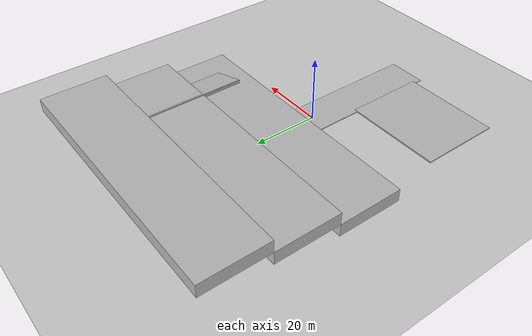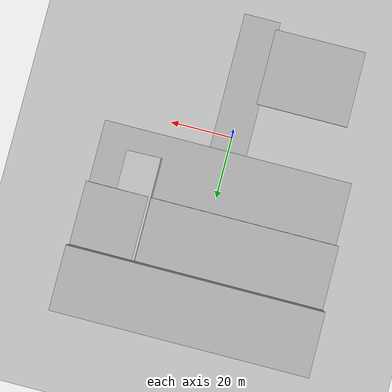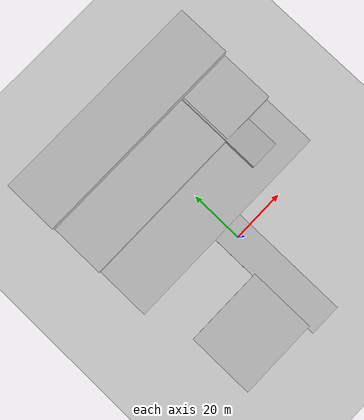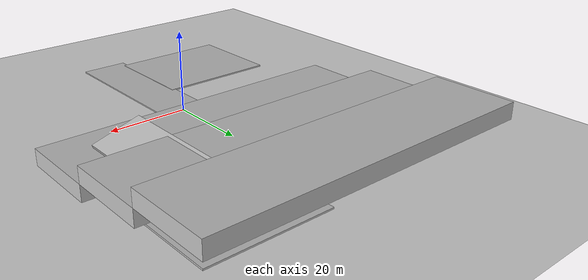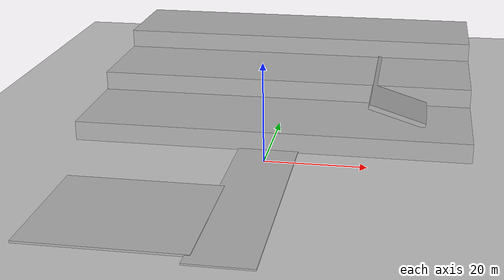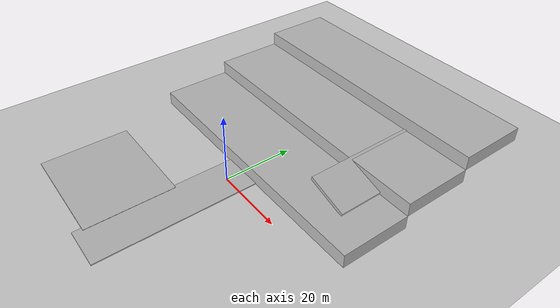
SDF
<?xml version="1.0" ?>
<sdf version="1.9">

  <world name="mine_base">

    <!-- PHYSICS                                               -->

    <physics name="default_physics" type="ode">
      <max_step_size>0.001</max_step_size>
      <real_time_factor>1</real_time_factor>
      <real_time_update_rate>1000</real_time_update_rate>
    </physics>

    <!-- LIGHTING                                              -->

    <light name="sun" type="directional">
      <cast_shadows>true</cast_shadows>
      <pose>0 0 100 0 0 0</pose>
      <diffuse>0.8 0.8 0.8 1</diffuse>
      <specular>0.2 0.2 0.2 1</specular>
      <direction>-0.5 0.5 -1</direction>
    </light>

    <!-- GROUND                                                -->

    <model name="ground">
      <static>true</static>

      <link name="link">

        <collision name="collision">
          <geometry>
            <plane>
              <normal>0 0 1</normal>
              <size>500 500</size>
            </plane>
          </geometry>
        </collision>

        <visual name="visual">
          <geometry>
            <plane>
              <normal>0 0 1</normal>
              <size>500 500</size>
            </plane>
          </geometry>
        </visual>

      </link>
    </model>

    <!-- MINE BENCH 1                                          -->

    <model name="mine_bench_1">
      <static>true</static>
      <pose>0 15 2 0 0 0</pose>

      <link name="link">

        <collision name="collision">
          <geometry>
            <box>
              <size>80 20 4</size>
            </box>
          </geometry>
        </collision>

        <visual name="visual">
          <geometry>
            <box>
              <size>80 20 4</size>
            </box>
          </geometry>
        </visual>

      </link>
    </model>

    <!-- MINE BENCH 2                                          -->

    <model name="mine_bench_2">
      <static>true</static>
      <pose>0 35 6 0 0 0</pose>

      <link name="link">

        <collision name="collision">
          <geometry>
            <box>
              <size>80 20 4</size>
            </box>
          </geometry>
        </collision>

        <visual name="visual">
          <geometry>
            <box>
              <size>80 20 4</size>
            </box>
          </geometry>
        </visual>

      </link>
    </model>

    <!-- MINE BENCH 3                                          -->

    <model name="mine_bench_3">
      <static>true</static>
      <pose>0 55 10 0 0 0</pose>

      <link name="link">

        <collision name="collision">
          <geometry>
            <box>
              <size>80 20 4</size>
            </box>
          </geometry>
        </collision>

        <visual name="visual">
          <geometry>
            <box>
              <size>80 20 4</size>
            </box>
          </geometry>
        </visual>

      </link>
    </model>

    <!-- MAIN HAUL ROAD                                        -->

    <model name="main_haul_road">
      <static>true</static>
      <pose>0 -5 0.15 0 0 0</pose>

      <link name="link">

        <collision name="collision">
          <geometry>
            <box>
              <size>12 70 0.3</size>
            </box>
          </geometry>
        </collision>

        <visual name="visual">
          <geometry>
            <box>
              <size>12 70 0.3</size>
            </box>
          </geometry>
        </visual>

      </link>
    </model>

    <!-- HAUL ROAD RAMP                                        -->

    <model name="haul_road_ramp">
      <static>true</static>

      <pose>25 35 6 0 0.30 0</pose>

      <link name="link">

        <collision name="collision">
          <geometry>
            <box>
              <size>12 45 1</size>
            </box>
          </geometry>
        </collision>

        <visual name="visual">
          <geometry>
            <box>
              <size>12 45 1</size>
            </box>
          </geometry>
        </visual>

      </link>
    </model>

    <!-- LOADING AREA                                          -->

    <model name="loading_area">
      <static>true</static>
      <pose>-20 -25 0.2 0 0 0</pose>

      <link name="link">

        <collision name="collision">
          <geometry>
            <box>
              <size>30 25 0.4</size>
            </box>
          </geometry>
        </collision>

        <visual name="visual">
          <geometry>
            <box>
              <size>30 25 0.4</size>
            </box>
          </geometry>
        </visual>

      </link>
    </model>

    <!-- DUMPING AREA                                          -->

    <model name="dumping_area">
      <static>true</static>
      <pose>20 45 0.2 0 0 0</pose>

      <link name="link">

        <collision name="collision">
          <geometry>
            <box>
              <size>30 25 0.4</size>
            </box>
          </geometry>
        </collision>

        <visual name="visual">
          <geometry>
            <box>
              <size>30 25 0.4</size>
            </box>
          </geometry>
        </visual>

      </link>
    </model>

  </world>

</sdf>
